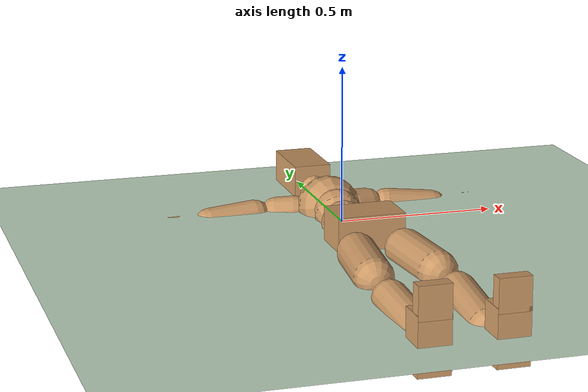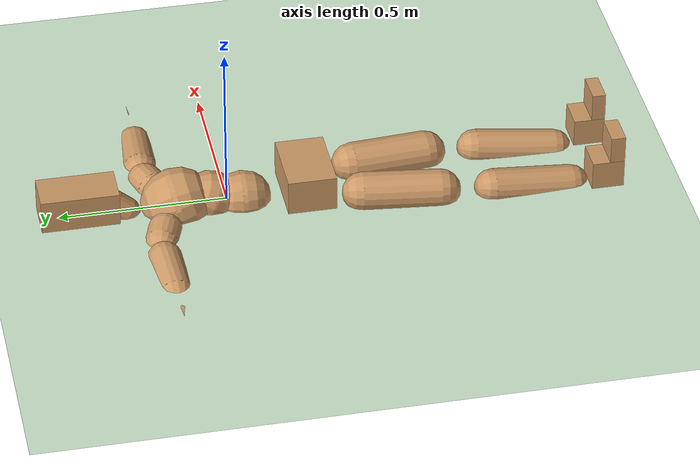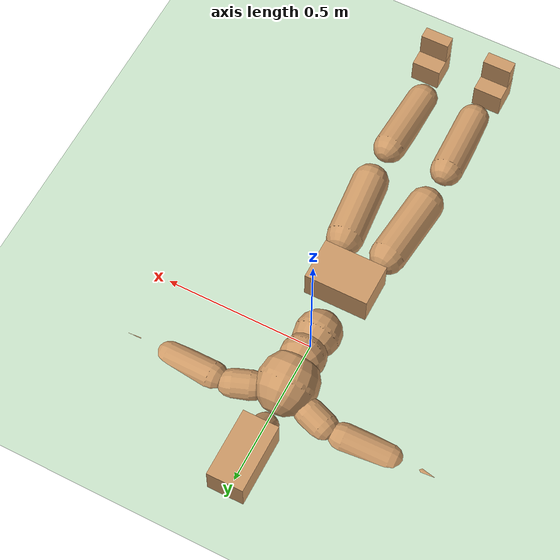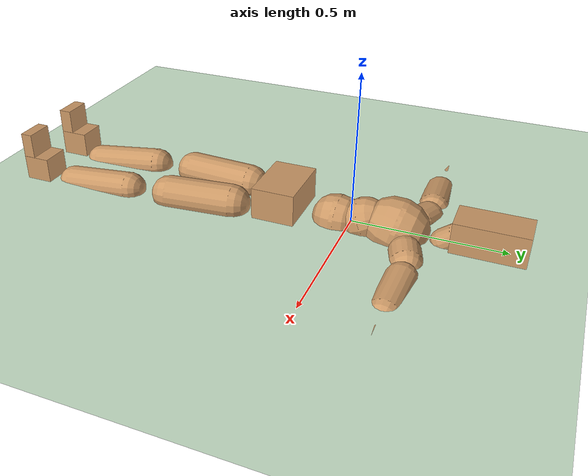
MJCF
<mujoco model="humanoid">
  <compiler coordinate="local"/>
  <default>
    <joint damping="0.0" armature="0.01" stiffness="0.0" limited="true"/>
    <geom conaffinity="1" condim="3" contype="7" margin="0.001" rgba="0.8 0.6 .4 1"/>
  </default>
  <asset>
    <texture type="skybox" builtin="gradient" rgb1=".4 .5 .6" rgb2="0 0 0" width="100" height="100"/>
    <texture builtin="flat" height="1278" mark="cross" markrgb="1 1 1" name="texgeom" random="0.01" rgb1="0.8 0.6 0.4" rgb2="0.8 0.6 0.4" type="cube" width="127"/>
    <texture builtin="checker" height="100" name="texplane" rgb1="0 0 0" rgb2="0.8 0.8 0.8" type="2d" width="100"/>
    <material name="MatPlane" reflectance="0.5" shininess="1" specular="1" texrepeat="60 60" texture="texplane"/>
    <material name="geom" texture="texgeom" texuniform="true"/>
  </asset>
  <worldbody>
    <light cutoff="100" diffuse="1 1 1" dir="-0 0 -1.3" directional="true" exponent="1" pos="0 0 1.3" specular=".1 .1 .1"/>
    <geom conaffinity="1" condim="3" name="floor" pos="0 0 0" rgba="0.8 0.9 0.8 1" size="100 100 .2" type="plane" material="MatPlane"/>
    <body name="Pelvis" pos="-0.0018 -0.2233 0.0282">
      <freejoint name="Pelvis"/>
      <geom type="box" density="3165.830095" pos="-0.0000 -0.0121 -0.0055" size="0.1069 0.0722 0.083" quat="1.0000 0.0000 0.0000 0.0000" name="Pelvis"/>
      <body name="L_Hip" pos="0.0695 -0.0914 -0.0068">
        <joint name="L_Hip_x" type="hinge" pos="0 0 0" axis="1 0 0" user="250 2.5 1 500 10 2" armature="0.01" range="-180.0000 180.0000" damping="0" stiffness="0"/>
        <joint name="L_Hip_y" type="hinge" pos="0 0 0" axis="0 1 0" user="250 2.5 1 500 10 2" armature="0.01" range="-180.0000 180.0000" damping="0" stiffness="0"/>
        <joint name="L_Hip_z" type="hinge" pos="0 0 0" axis="0 0 1" user="250 2.5 1 500 10 2" armature="0.01" range="-180.0000 180.0000" damping="0" stiffness="0"/>
        <geom type="capsule" contype="1" conaffinity="1" density="2040.816327" fromto="0.0069 -0.0750 -0.0009 0.0274 -0.3002 -0.0036" size="0.0615" name="L_Hip"/>
        <body name="L_Knee" pos="0.0343 -0.3752 -0.0045">
          <joint name="L_Knee_x" type="hinge" pos="0 0 0" axis="1 0 0" user="250 2.5 1 500 10 2" armature="0.01" range="-180.0000 180.0000" damping="0" stiffness="0"/>
          <joint name="L_Knee_y" type="hinge" pos="0 0 0" axis="0 1 0" user="250 2.5 1 500 10 2" armature="0.01" range="-180.0000 180.0000" damping="0" stiffness="0"/>
          <joint name="L_Knee_z" type="hinge" pos="0 0 0" axis="0 0 1" user="250 2.5 1 500 10 2" armature="0.01" range="-180.0000 180.0000" damping="0" stiffness="0"/>
          <geom type="capsule" contype="1" conaffinity="1" density="1234.567901" fromto="-0.0027 -0.0796 -0.0087 -0.0109 -0.3184 -0.0350" size="0.0541" name="L_Knee"/>
          <body name="L_Ankle" pos="-0.0136 -0.398 -0.0437">
            <joint name="L_Ankle_x" type="hinge" pos="0 0 0" axis="1 0 0" user="150 2.5 1 500 10 2" armature="0.01" range="-180.0000 180.0000" damping="0" stiffness="0"/>
            <joint name="L_Ankle_y" type="hinge" pos="0 0 0" axis="0 1 0" user="150 2.5 1 500 10 2" armature="0.01" range="-180.0000 180.0000" damping="0" stiffness="0"/>
            <joint name="L_Ankle_z" type="hinge" pos="0 0 0" axis="0 0 1" user="150 2.5 1 500 10 2" armature="0.01" range="-180.0000 180.0000" damping="0" stiffness="0"/>
            <geom type="box" density="449.071569" pos="0.0233 -0.0239 0.0242" size="0.0483 0.0464 0.085" quat="1.0000 0.0000 0.0000 0.0000" name="L_Ankle"/>
            <body name="L_Toe" pos="0.0264 -0.0558 0.1193">
              <joint name="L_Toe_x" type="hinge" pos="0 0 0" axis="1 0 0" user="150 1 1 500 1 1" armature="0.01" range="-180.0000 180.0000" damping="0" stiffness="0"/>
              <joint name="L_Toe_y" type="hinge" pos="0 0 0" axis="0 1 0" user="150 1 1 500 1 1" armature="0.01" range="-180.0000 180.0000" damping="0" stiffness="0"/>
              <joint name="L_Toe_z" type="hinge" pos="0 0 0" axis="0 0 1" user="150 1 1 500 1 1" armature="0.01" range="-180.0000 180.0000" damping="0" stiffness="0"/>
              <geom type="box" density="423.206892" pos="-0.0030 0.0055 0.0248" size="0.0478 0.02 0.0496" quat="1.0000 0.0000 0.0000 0.0000" name="L_Toe"/>
            </body>
          </body>
        </body>
      </body>
      <body name="R_Hip" pos="-0.0677 -0.0905 -0.0043">
        <joint name="R_Hip_x" type="hinge" pos="0 0 0" axis="1 0 0" user="250 2.5 1 500 10 2" armature="0.01" range="-180.0000 180.0000" damping="0" stiffness="0"/>
        <joint name="R_Hip_y" type="hinge" pos="0 0 0" axis="0 1 0" user="250 2.5 1 500 10 2" armature="0.01" range="-180.0000 180.0000" damping="0" stiffness="0"/>
        <joint name="R_Hip_z" type="hinge" pos="0 0 0" axis="0 0 1" user="250 2.5 1 500 10 2" armature="0.01" range="-180.0000 180.0000" damping="0" stiffness="0"/>
        <geom type="capsule" contype="1" conaffinity="1" density="2040.816327" fromto="-0.0077 -0.0765 -0.0018 -0.0306 -0.3061 -0.0071" size="0.0606" name="R_Hip"/>
        <body name="R_Knee" pos="-0.0383 -0.3826 -0.0089">
          <joint name="R_Knee_x" type="hinge" pos="0 0 0" axis="1 0 0" user="250 2.5 1 500 10 2" armature="0.01" range="-180.0000 180.0000" damping="0" stiffness="0"/>
          <joint name="R_Knee_y" type="hinge" pos="0 0 0" axis="0 1 0" user="250 2.5 1 500 10 2" armature="0.01" range="-180.0000 180.0000" damping="0" stiffness="0"/>
          <joint name="R_Knee_z" type="hinge" pos="0 0 0" axis="0 0 1" user="250 2.5 1 500 10 2" armature="0.01" range="-180.0000 180.0000" damping="0" stiffness="0"/>
          <geom type="capsule" contype="1" conaffinity="1" density="1234.567901" fromto="0.0032 -0.0797 -0.0085 0.0126 -0.3187 -0.0338" size="0.0541" name="R_Knee"/>
          <body name="R_Ankle" pos="0.0158 -0.3984 -0.0423">
            <joint name="R_Ankle_x" type="hinge" pos="0 0 0" axis="1 0 0" user="150 1 1 500 10 2" armature="0.01" range="-180.0000 180.0000" damping="0" stiffness="0"/>
            <joint name="R_Ankle_y" type="hinge" pos="0 0 0" axis="0 1 0" user="150 1 1 500 10 2" armature="0.01" range="-180.0000 180.0000" damping="0" stiffness="0"/>
            <joint name="R_Ankle_z" type="hinge" pos="0 0 0" axis="0 0 1" user="150 1 1 500 10 2" armature="0.01" range="-180.0000 180.0000" damping="0" stiffness="0"/>
            <geom type="box" density="434.700981" pos="-0.0212 -0.0174 0.0256" size="0.0483 0.0478 0.0865" quat="1.0000 0.0000 0.0000 0.0000" name="R_Ankle"/>
            <body name="R_Toe" pos="-0.0254 -0.0481 0.1233">
              <joint name="R_Toe_x" type="hinge" pos="0 0 0" axis="1 0 0" user="150 1 1 500 1 1" armature="0.01" range="-180.0000 180.0000" damping="0" stiffness="0"/>
              <joint name="R_Toe_y" type="hinge" pos="0 0 0" axis="0 1 0" user="150 1 1 500 1 1" armature="0.01" range="-180.0000 180.0000" damping="0" stiffness="0"/>
              <joint name="R_Toe_z" type="hinge" pos="0 0 0" axis="0 0 1" user="150 1 1 500 1 1" armature="0.01" range="-180.0000 180.0000" damping="0" stiffness="0"/>
              <geom type="box" density="407.384095" pos="0.0042 0.0045 0.0227" size="0.0479 0.0216 0.0493" quat="1.0000 0.0000 0.0000 0.0000" name="R_Toe"/>
            </body>
          </body>
        </body>
      </body>
      <body name="Torso" pos="-0.0025 0.109 -0.0267">
        <joint name="Torso_x" type="hinge" pos="0 0 0" axis="1 0 0" user="500 5 1 500 10 2" armature="0.01" range="-180.0000 180.0000" damping="0" stiffness="0"/>
        <joint name="Torso_y" type="hinge" pos="0 0 0" axis="0 1 0" user="500 5 1 500 10 2" armature="0.01" range="-180.0000 180.0000" damping="0" stiffness="0"/>
        <joint name="Torso_z" type="hinge" pos="0 0 0" axis="0 0 1" user="500 5 1 500 10 2" armature="0.01" range="-180.0000 180.0000" damping="0" stiffness="0"/>
        <geom type="capsule" contype="1" conaffinity="1" density="2040.816327" fromto="0.0025 0.0608 0.0005 0.0030 0.0743 0.0006" size="0.0769" name="Torso"/>
        <body name="Spine" pos="0.0055 0.1352 0.0011">
          <joint name="Spine_x" type="hinge" pos="0 0 0" axis="1 0 0" user="500 5 1 500 10 2" armature="0.01" range="-180.0000 180.0000" damping="0" stiffness="0"/>
          <joint name="Spine_y" type="hinge" pos="0 0 0" axis="0 1 0" user="500 5 1 500 10 2" armature="0.01" range="-180.0000 180.0000" damping="0" stiffness="0"/>
          <joint name="Spine_z" type="hinge" pos="0 0 0" axis="0 0 1" user="500 5 1 500 10 2" armature="0.01" range="-180.0000 180.0000" damping="0" stiffness="0"/>
          <geom type="capsule" contype="1" conaffinity="1" density="2040.816327" fromto="0.0007 0.0238 0.0114 0.0008 0.0291 0.0140" size="0.0755" name="Spine"/>
          <body name="Chest" pos="0.0015 0.0529 0.0254">
            <joint name="Chest_x" type="hinge" pos="0 0 0" axis="1 0 0" user="500 5 1 500 10 2" armature="0.01" range="-180.0000 180.0000" damping="0" stiffness="0"/>
            <joint name="Chest_y" type="hinge" pos="0 0 0" axis="0 1 0" user="500 5 1 500 10 2" armature="0.01" range="-180.0000 180.0000" damping="0" stiffness="0"/>
            <joint name="Chest_z" type="hinge" pos="0 0 0" axis="0 0 1" user="500 5 1 500 10 2" armature="0.01" range="-180.0000 180.0000" damping="0" stiffness="0"/>
            <geom type="capsule" contype="1" conaffinity="1" density="2040.816327" fromto="-0.0009 0.0682 -0.0173 -0.0010 0.0833 -0.0212" size="0.1002" name="Chest"/>
            <body name="Neck" pos="-0.0028 0.2139 -0.0429">
              <joint name="Neck_x" type="hinge" pos="0 0 0" axis="1 0 0" user="150 1 1 250 50 4" armature="0.01" range="-180.0000 180.0000" damping="0" stiffness="0"/>
              <joint name="Neck_y" type="hinge" pos="0 0 0" axis="0 1 0" user="150 1 1 250 50 4" armature="0.01" range="-180.0000 180.0000" damping="0" stiffness="0"/>
              <joint name="Neck_z" type="hinge" pos="0 0 0" axis="0 0 1" user="150 1 1 250 50 4" armature="0.01" range="-180.0000 180.0000" damping="0" stiffness="0"/>
              <geom type="capsule" contype="1" conaffinity="1" density="1000" fromto="0.0010 0.0130 0.0103 0.0041 0.0520 0.0411" size="0.0436" name="Neck"/>
              <body name="Head" pos="0.0052 0.065 0.0513">
                <joint name="Head_x" type="hinge" pos="0 0 0" axis="1 0 0" user="150 1 1 250 50 4" armature="0.01" range="-180.0000 180.0000" damping="0" stiffness="0"/>
                <joint name="Head_y" type="hinge" pos="0 0 0" axis="0 1 0" user="150 1 1 250 50 4" armature="0.01" range="-180.0000 180.0000" damping="0" stiffness="0"/>
                <joint name="Head_z" type="hinge" pos="0 0 0" axis="0 0 1" user="150 1 1 250 50 4" armature="0.01" range="-180.0000 180.0000" damping="0" stiffness="0"/>
                <geom type="box" density="1018.069894" pos="-0.0042 0.0876 -0.0116" size="0.0606 0.1154 0.076" quat="1.0000 0.0000 0.0000 0.0000" name="Head"/>
              </body>
            </body>
            <body name="L_Thorax" pos="0.0788 0.1217 -0.0341">
              <joint name="L_Thorax_x" type="hinge" pos="0 0 0" axis="1 0 0" user="200 2 1 500 50 4" armature="0.01" range="-180.0000 180.0000" damping="0" stiffness="0"/>
              <joint name="L_Thorax_y" type="hinge" pos="0 0 0" axis="0 1 0" user="200 2 1 500 50 4" armature="0.01" range="-180.0000 180.0000" damping="0" stiffness="0"/>
              <joint name="L_Thorax_z" type="hinge" pos="0 0 0" axis="0 0 1" user="200 2 1 500 50 4" armature="0.01" range="-180.0000 180.0000" damping="0" stiffness="0"/>
              <geom type="capsule" contype="1" conaffinity="1" density="1000" fromto="0.0182 0.0061 -0.0018 0.0728 0.0244 -0.0071" size="0.0521" name="L_Thorax"/>
              <body name="L_Shoulder" pos="0.091 0.0305 -0.0089">
                <joint name="L_Shoulder_x" type="hinge" pos="0 0 0" axis="1 0 0" user="200 2 1 500 50 4" armature="0.01" range="-720.0000 720.0000" damping="0" stiffness="0"/>
                <joint name="L_Shoulder_y" type="hinge" pos="0 0 0" axis="0 1 0" user="200 2 1 500 50 4" armature="0.01" range="-720.0000 720.0000" damping="0" stiffness="0"/>
                <joint name="L_Shoulder_z" type="hinge" pos="0 0 0" axis="0 0 1" user="200 2 1 500 50 4" armature="0.01" range="-720.0000 720.0000" damping="0" stiffness="0"/>
                <geom type="capsule" contype="1" conaffinity="1" density="1000" fromto="0.0519 -0.0026 -0.0055 0.2077 -0.0102 -0.0220" size="0.0517" name="L_Shoulder"/>
                <body name="L_Elbow" pos="0.2596 -0.0128 -0.0275">
                  <joint name="L_Elbow_x" type="hinge" pos="0 0 0" axis="1 0 0" user="150 1 1 150 10 2" armature="0.01" range="-720.0000 720.0000" damping="0" stiffness="0"/>
                  <joint name="L_Elbow_y" type="hinge" pos="0 0 0" axis="0 1 0" user="150 1 1 150 10 2" armature="0.01" range="-720.0000 720.0000" damping="0" stiffness="0"/>
                  <joint name="L_Elbow_z" type="hinge" pos="0 0 0" axis="0 0 1" user="150 1 1 150 10 2" armature="0.01" range="-720.0000 720.0000" damping="0" stiffness="0"/>
                  <geom type="capsule" contype="1" conaffinity="1" density="1000" fromto="0.0498 0.0018 -0.0002 0.1994 0.0072 -0.0009" size="0.0405" name="L_Elbow"/>
                  <body name="L_Wrist" pos="0.2492 0.009 -0.0012">
                    <joint name="L_Wrist_x" type="hinge" pos="0 0 0" axis="1 0 0" user="100 1 1 150 1 1" armature="0.01" range="-180.0000 180.0000" damping="0" stiffness="0"/>
                    <joint name="L_Wrist_y" type="hinge" pos="0 0 0" axis="0 1 0" user="100 1 1 150 1 1" armature="0.01" range="-180.0000 180.0000" damping="0" stiffness="0"/>
                    <joint name="L_Wrist_z" type="hinge" pos="0 0 0" axis="0 0 1" user="100 1 1 150 1 1" armature="0.01" range="-180.0000 180.0000" damping="0" stiffness="0"/>
                    <geom type="capsule" contype="1" conaffinity="1" density="1000" fromto="0.0168 -0.0016 -0.0030 0.0672 -0.0065 -0.0120" size="0.0318" name="L_Wrist"/>
                    <body name="L_Hand" pos="0.084 -0.0082 -0.0149">
                      <joint name="L_Hand_x" type="hinge" pos="0 0 0" axis="1 0 0" user="50 1 1 150 1 1" armature="0.01" range="-180.0000 180.0000" damping="0" stiffness="0"/>
                      <joint name="L_Hand_y" type="hinge" pos="0 0 0" axis="0 1 0" user="50 1 1 150 1 1" armature="0.01" range="-180.0000 180.0000" damping="0" stiffness="0"/>
                      <joint name="L_Hand_z" type="hinge" pos="0 0 0" axis="0 0 1" user="50 1 1 150 1 1" armature="0.01" range="-180.0000 180.0000" damping="0" stiffness="0"/>
                      <geom type="box" density="400.552564" pos="0.0493 0.0010 -0.0058" size="0.0585 0.0158 0.0538" quat="1.0000 0.0000 0.0000 0.0000" name="L_Hand"/>
                    </body>
                  </body>
                </body>
              </body>
            </body>
            <body name="R_Thorax" pos="-0.0818 0.1188 -0.0386">
              <joint name="R_Thorax_x" type="hinge" pos="0 0 0" axis="1 0 0" user="200 2 1 150 10 2" armature="0.01" range="-180.0000 180.0000" damping="0" stiffness="0"/>
              <joint name="R_Thorax_y" type="hinge" pos="0 0 0" axis="0 1 0" user="200 2 1 150 10 2" armature="0.01" range="-180.0000 180.0000" damping="0" stiffness="0"/>
              <joint name="R_Thorax_z" type="hinge" pos="0 0 0" axis="0 0 1" user="200 2 1 150 10 2" armature="0.01" range="-180.0000 180.0000" damping="0" stiffness="0"/>
              <geom type="capsule" contype="1" conaffinity="1" density="1000" fromto="-0.0192 0.0065 -0.0018 -0.0768 0.0260 -0.0073" size="0.0511" name="R_Thorax"/>
              <body name="R_Shoulder" pos="-0.096 0.0326 -0.0091">
                <joint name="R_Shoulder_x" type="hinge" pos="0 0 0" axis="1 0 0" user="200 2 1 250 10 2" armature="0.01" range="-720.0000 720.0000" damping="0" stiffness="0"/>
                <joint name="R_Shoulder_y" type="hinge" pos="0 0 0" axis="0 1 0" user="200 2 1 250 10 2" armature="0.01" range="-720.0000 720.0000" damping="0" stiffness="0"/>
                <joint name="R_Shoulder_z" type="hinge" pos="0 0 0" axis="0 0 1" user="200 2 1 250 10 2" armature="0.01" range="-720.0000 720.0000" damping="0" stiffness="0"/>
                <geom type="capsule" contype="1" conaffinity="1" density="1000" fromto="-0.0507 -0.0027 -0.0043 -0.2030 -0.0107 -0.0171" size="0.0531" name="R_Shoulder"/>
                <body name="R_Elbow" pos="-0.2537 -0.0133 -0.0214">
                  <joint name="R_Elbow_x" type="hinge" pos="0 0 0" axis="1 0 0" user="150 1 1 150 10 2" armature="0.01" range="-720.0000 720.0000" damping="0" stiffness="0"/>
                  <joint name="R_Elbow_y" type="hinge" pos="0 0 0" axis="0 1 0" user="150 1 1 150 10 2" armature="0.01" range="-720.0000 720.0000" damping="0" stiffness="0"/>
                  <joint name="R_Elbow_z" type="hinge" pos="0 0 0" axis="0 0 1" user="150 1 1 150 10 2" armature="0.01" range="-720.0000 720.0000" damping="0" stiffness="0"/>
                  <geom type="capsule" contype="1" conaffinity="1" density="1000" fromto="-0.0511 0.0016 -0.0011 -0.2042 0.0062 -0.0044" size="0.0408" name="R_Elbow"/>
                  <body name="R_Wrist" pos="-0.2553 0.0078 -0.0056">
                    <joint name="R_Wrist_x" type="hinge" pos="0 0 0" axis="1 0 0" user="100 1 1 150 1 1" armature="0.01" range="-180.0000 180.0000" damping="0" stiffness="0"/>
                    <joint name="R_Wrist_y" type="hinge" pos="0 0 0" axis="0 1 0" user="100 1 1 150 1 1" armature="0.01" range="-180.0000 180.0000" damping="0" stiffness="0"/>
                    <joint name="R_Wrist_z" type="hinge" pos="0 0 0" axis="0 0 1" user="100 1 1 150 1 1" armature="0.01" range="-180.0000 180.0000" damping="0" stiffness="0"/>
                    <geom type="capsule" contype="1" conaffinity="1" density="1000" fromto="-0.0169 -0.0012 -0.0021 -0.0677 -0.0049 -0.0083" size="0.0326" name="R_Wrist"/>
                    <body name="R_Hand" pos="-0.0846 -0.0061 -0.0103">
                      <joint name="R_Hand_x" type="hinge" pos="0 0 0" axis="1 0 0" user="50 1 1 150 1 1" armature="0.01" range="-180.0000 180.0000" damping="0" stiffness="0"/>
                      <joint name="R_Hand_y" type="hinge" pos="0 0 0" axis="0 1 0" user="50 1 1 150 1 1" armature="0.01" range="-180.0000 180.0000" damping="0" stiffness="0"/>
                      <joint name="R_Hand_z" type="hinge" pos="0 0 0" axis="0 0 1" user="50 1 1 150 1 1" armature="0.01" range="-180.0000 180.0000" damping="0" stiffness="0"/>
                      <geom type="box" density="403.679611" pos="-0.0462 -0.0009 -0.0079" size="0.0569 0.0164 0.0546" quat="1.0000 0.0000 0.0000 0.0000" name="R_Hand"/>
                    </body>
                  </body>
                </body>
              </body>
            </body>
          </body>
        </body>
      </body>
    </body>
  </worldbody>
  <actuator>
    <motor name="L_Hip_x" joint="L_Hip_x" gear="1"/>
    <motor name="L_Hip_y" joint="L_Hip_y" gear="1"/>
    <motor name="L_Hip_z" joint="L_Hip_z" gear="1"/>
    <motor name="L_Knee_x" joint="L_Knee_x" gear="1"/>
    <motor name="L_Knee_y" joint="L_Knee_y" gear="1"/>
    <motor name="L_Knee_z" joint="L_Knee_z" gear="1"/>
    <motor name="L_Ankle_x" joint="L_Ankle_x" gear="1"/>
    <motor name="L_Ankle_y" joint="L_Ankle_y" gear="1"/>
    <motor name="L_Ankle_z" joint="L_Ankle_z" gear="1"/>
    <motor name="L_Toe_x" joint="L_Toe_x" gear="1"/>
    <motor name="L_Toe_y" joint="L_Toe_y" gear="1"/>
    <motor name="L_Toe_z" joint="L_Toe_z" gear="1"/>
    <motor name="R_Hip_x" joint="R_Hip_x" gear="1"/>
    <motor name="R_Hip_y" joint="R_Hip_y" gear="1"/>
    <motor name="R_Hip_z" joint="R_Hip_z" gear="1"/>
    <motor name="R_Knee_x" joint="R_Knee_x" gear="1"/>
    <motor name="R_Knee_y" joint="R_Knee_y" gear="1"/>
    <motor name="R_Knee_z" joint="R_Knee_z" gear="1"/>
    <motor name="R_Ankle_x" joint="R_Ankle_x" gear="1"/>
    <motor name="R_Ankle_y" joint="R_Ankle_y" gear="1"/>
    <motor name="R_Ankle_z" joint="R_Ankle_z" gear="1"/>
    <motor name="R_Toe_x" joint="R_Toe_x" gear="1"/>
    <motor name="R_Toe_y" joint="R_Toe_y" gear="1"/>
    <motor name="R_Toe_z" joint="R_Toe_z" gear="1"/>
    <motor name="Torso_x" joint="Torso_x" gear="1"/>
    <motor name="Torso_y" joint="Torso_y" gear="1"/>
    <motor name="Torso_z" joint="Torso_z" gear="1"/>
    <motor name="Spine_x" joint="Spine_x" gear="1"/>
    <motor name="Spine_y" joint="Spine_y" gear="1"/>
    <motor name="Spine_z" joint="Spine_z" gear="1"/>
    <motor name="Chest_x" joint="Chest_x" gear="1"/>
    <motor name="Chest_y" joint="Chest_y" gear="1"/>
    <motor name="Chest_z" joint="Chest_z" gear="1"/>
    <motor name="Neck_x" joint="Neck_x" gear="1"/>
    <motor name="Neck_y" joint="Neck_y" gear="1"/>
    <motor name="Neck_z" joint="Neck_z" gear="1"/>
    <motor name="Head_x" joint="Head_x" gear="1"/>
    <motor name="Head_y" joint="Head_y" gear="1"/>
    <motor name="Head_z" joint="Head_z" gear="1"/>
    <motor name="L_Thorax_x" joint="L_Thorax_x" gear="1"/>
    <motor name="L_Thorax_y" joint="L_Thorax_y" gear="1"/>
    <motor name="L_Thorax_z" joint="L_Thorax_z" gear="1"/>
    <motor name="L_Shoulder_x" joint="L_Shoulder_x" gear="1"/>
    <motor name="L_Shoulder_y" joint="L_Shoulder_y" gear="1"/>
    <motor name="L_Shoulder_z" joint="L_Shoulder_z" gear="1"/>
    <motor name="L_Elbow_x" joint="L_Elbow_x" gear="1"/>
    <motor name="L_Elbow_y" joint="L_Elbow_y" gear="1"/>
    <motor name="L_Elbow_z" joint="L_Elbow_z" gear="1"/>
    <motor name="L_Wrist_x" joint="L_Wrist_x" gear="1"/>
    <motor name="L_Wrist_y" joint="L_Wrist_y" gear="1"/>
    <motor name="L_Wrist_z" joint="L_Wrist_z" gear="1"/>
    <motor name="L_Hand_x" joint="L_Hand_x" gear="1"/>
    <motor name="L_Hand_y" joint="L_Hand_y" gear="1"/>
    <motor name="L_Hand_z" joint="L_Hand_z" gear="1"/>
    <motor name="R_Thorax_x" joint="R_Thorax_x" gear="1"/>
    <motor name="R_Thorax_y" joint="R_Thorax_y" gear="1"/>
    <motor name="R_Thorax_z" joint="R_Thorax_z" gear="1"/>
    <motor name="R_Shoulder_x" joint="R_Shoulder_x" gear="1"/>
    <motor name="R_Shoulder_y" joint="R_Shoulder_y" gear="1"/>
    <motor name="R_Shoulder_z" joint="R_Shoulder_z" gear="1"/>
    <motor name="R_Elbow_x" joint="R_Elbow_x" gear="1"/>
    <motor name="R_Elbow_y" joint="R_Elbow_y" gear="1"/>
    <motor name="R_Elbow_z" joint="R_Elbow_z" gear="1"/>
    <motor name="R_Wrist_x" joint="R_Wrist_x" gear="1"/>
    <motor name="R_Wrist_y" joint="R_Wrist_y" gear="1"/>
    <motor name="R_Wrist_z" joint="R_Wrist_z" gear="1"/>
    <motor name="R_Hand_x" joint="R_Hand_x" gear="1"/>
    <motor name="R_Hand_y" joint="R_Hand_y" gear="1"/>
    <motor name="R_Hand_z" joint="R_Hand_z" gear="1"/>
  </actuator>
  <contact>
    <exclude body1="Torso" body2="Chest"/>
    <exclude body1="Head" body2="Chest"/>
    <exclude body1="R_Knee" body2="R_Toe"/>
    <exclude body1="R_Knee" body2="L_Ankle"/>
    <exclude body1="R_Knee" body2="L_Toe"/>
    <exclude body1="L_Knee" body2="L_Toe"/>
    <exclude body1="L_Knee" body2="R_Ankle"/>
    <exclude body1="L_Knee" body2="R_Toe"/>
    <exclude body1="L_Shoulder" body2="Chest"/>
    <exclude body1="R_Shoulder" body2="Chest"/>
  </contact>
  <sensor/>
  <size njmax="700" nconmax="700"/>
  <keyframe>
    <key name="mocapkey1" qpos="
        -0.14426346 -0.2548669  0.93561393  0.04709487  0.0399107
         0.67674685  0.7336231  0.17616479  0.08318119  0.04824333
        -0.07312427 -0.05859271 -0.04904975 -0.15061913  0.13697378
         0.08793706  0.0  0.0  0.0  0.15672256
        -0.06152193 -0.03302204 -0.0548543  0.03923444  0.06740185
        -0.05360978 -0.02410129  0.10172428  0.0  0.0
         0.0  0.09632684  0.00737159 -0.00681898  0.04040197
        -0.05157863  0.0183998  0.04037395 -0.01544289  0.01334759
        -0.01976619  0.04973658 -0.01946192  0.01356398 -0.00550782
        -0.01633868  0.08427852  0.01847901 -0.42414925 -0.01715259
        -0.19665715 -1.0586443  0.27059013 -0.42222056  0.20862088
        -0.14239776 -0.05630037 -0.08847867  0.0  0.0
         0.0  0.04334291  0.050582  0.43154302  0.00844709
         0.22953878  1.0244433 -0.00678981  0.33399022 -0.16710037
        -0.1558385  0.02925445  0.10611813  0.0  0.0
         0.0"/>
    <key name="tpose1" qpos="
        0.0  0.0  0.94  0.5  0.5
        0.5  0.5  0.0   0.0  0.0
        0.0  0.0  0.0   0.0  0.0
        0.0  0.0  0.0   0.0  0.0
        0.0  0.0  0.0   0.0  0.0
        0.0  0.0  0.0   0.0  0.0
        0.0  0.0  0.0   0.0  0.0
        0.0  0.0  0.0   0.0  0.0
        0.0  0.0  0.0   0.0  0.0
        0.0  0.0  0.0   0.0  0.0
        0.0  0.0  0.0   0.0  0.0
        0.0  0.0  0.0   0.0  0.0
        0.0  0.0  0.0   0.0  0.0
        0.0  0.0  0.0   0.0  0.0
        0.0  0.0  0.0   0.0  0.0
        0.0"/>
  </keyframe>
</mujoco>
